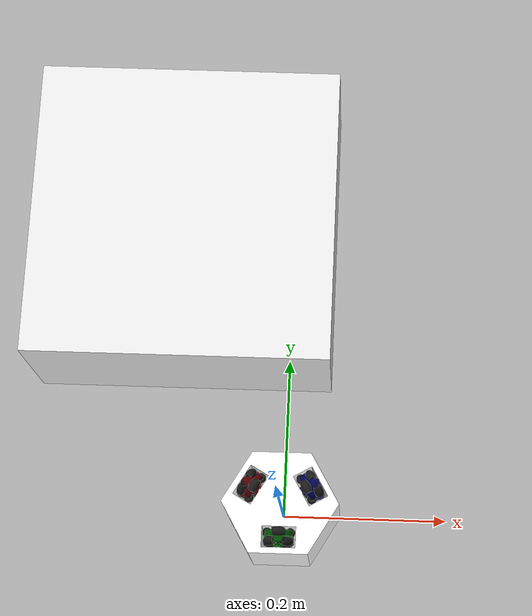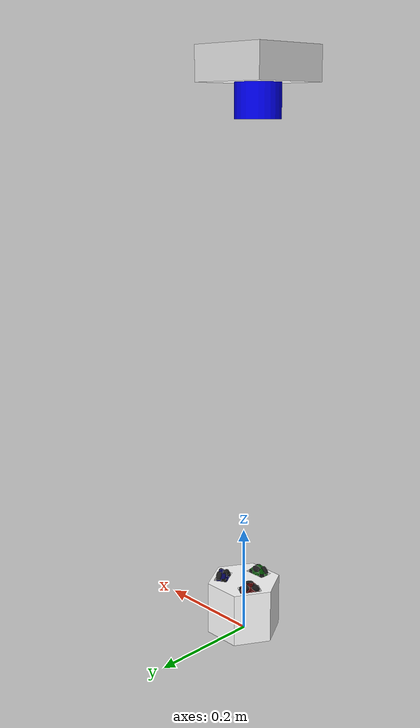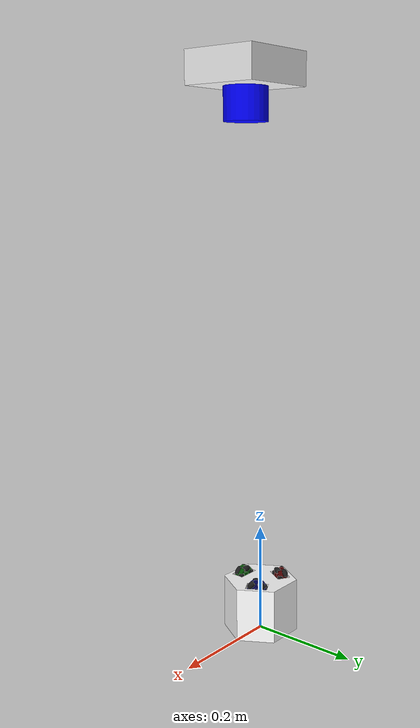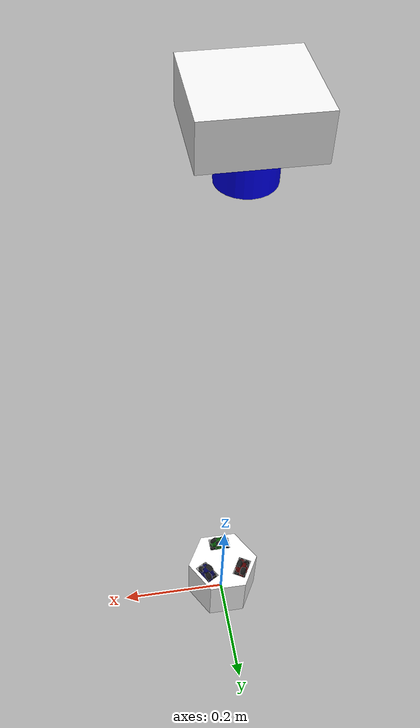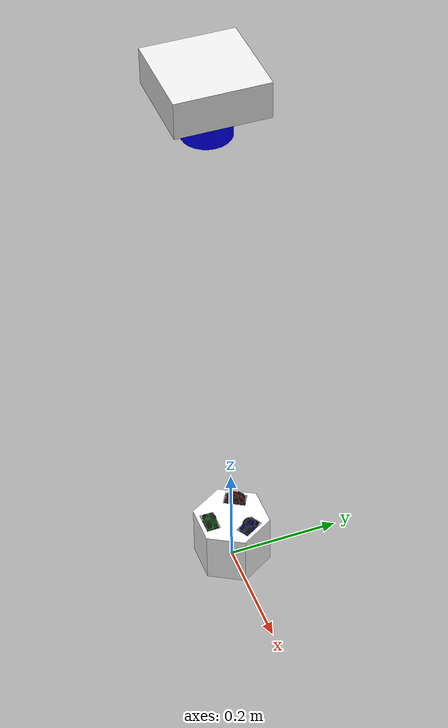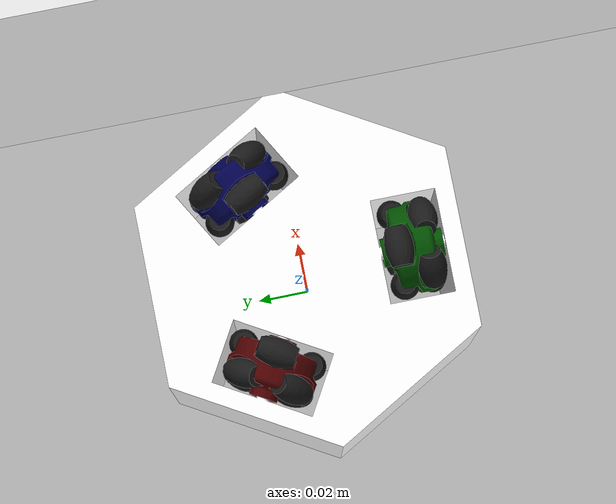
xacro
<?xml version="1.0"?>
<robot xmlns:xacro="http://www.ros.org/wiki/xacro" name="celconv">
  <xacro:include filename="$(find celconv_description)/urdf/celconv_cell.urdf.xacro"/>

  <!-- Define the number of rows and columns as input -->
  <xacro:arg name="num_rows" default="1"/>
  <xacro:arg name="num_cols" default="1"/>

  <xacro:arg name="is_sim" default="false"/>
  <xacro:arg name="cam_fov_h" default="1.3962634"/>

  <xacro:arg name="prefix" default=""/>

  <xacro:property name="is_sim" value="$(arg is_sim)"/>
  <xacro:property name="num_rows" value="$(arg num_rows)"/>
  <xacro:property name="num_cols" value="$(arg num_cols)"/>

  <!-- Define the distance between cells -->
  <xacro:property name="dist_bias" value="0.000"/>
  <xacro:property name="row_dist" value="${dist_bias + 0.12}"/>
  <xacro:property name="col_dist" value="${dist_bias + 0.06928 * 1.5}"/>
  <xacro:property name="row" value="0"/>
  <xacro:property name="col" value="0"/>

  <link name="base_link"></link>

  <!-- Define a macro to handle cell creation and joint connection -->
  <xacro:macro name="create_cells" params="row col num_rows num_cols">
    <!-- Base case: if row >= num_rows, stop the recursion -->
    <xacro:if value="${row >= num_rows}">
      <!-- Recursion stops -->
    </xacro:if>

    <!-- Continue if more rows are to be processed -->
    <xacro:if value="${row &lt; num_rows}">
      <!-- Calculate y position -->
      <xacro:property name="y" value="${row * row_dist - (col % 2) * (row_dist / 2)}"/>
      <xacro:property name="x" value="${col * col_dist}"/>
      <xacro:property name="z" value="0"/>

      <!-- Handle cells in the current row -->
      <xacro:if value="${col &lt; num_cols}">
        <xacro:property name="cell_index" value="${row * num_cols + col}"/>
        <xacro:celconv_cell name="${cell_index}"
                            parent_name="base"
                            color="1 1 1"
                            xyz="${x} ${y} ${z}"
                            rpy="0 0 0"
                            is_sim="$(arg is_sim)"/>

        <!-- Recurse for the next column -->
        <xacro:create_cells row="${row}" col="${col + 1}" num_rows="${num_rows}" num_cols="${num_cols}"/>
      </xacro:if>

      <!-- Move to the next row after finishing the current row's columns -->
      <xacro:if value="${col == num_cols}">
        <xacro:create_cells row="${row + 1}" col="0" num_rows="${num_rows}" num_cols="${num_cols}"/>
      </xacro:if>
    </xacro:if>
  </xacro:macro>

  <!-- Start the cell creation process -->
  <xacro:create_cells row="${row}" col="${col}" num_rows="${num_rows}" num_cols="${num_cols}"/>

  <!-- Define the camera -->

  <joint name="camera_joint" type="fixed">
    <origin xyz="${(num_cols-1) * col_dist * 0.5} ${(num_rows - 1.5) * row_dist * 0.5}  1" rpy="0 1.571 0"/>
    <parent link="base_link"/>
    <child link="camera_link"/>
  </joint>

  <link name="camera_link">
    <visual>
      <origin xyz="-0.03 0 0" rpy="0 0 0"/>
      <geometry>
        <box size="0.06 0.15 0.15" />
      </geometry>
      <material name="white" />
    </visual>
    <visual>
      <origin xyz="0.03 0 0 " rpy="0 ${pi/2} 0"/>
      <geometry>
        <cylinder length="0.06" radius="0.04" />
      </geometry>
      <material name="blue" >
        <color rgba="0 0 1 1"/> <!-- RGBA for blue color, fully opaque -->
      </material>
    </visual>
    <collision>
      <origin xyz="0.0 0 0" rpy="0 0 0"/>
      <geometry>
        <box size="0.15 0.15 0.12" />
      </geometry>
    </collision>
  </link>

  <joint name="camera_optical_joint" type="fixed">
    <origin xyz="0 0 0" rpy="-1.571 0 -1.571" />
    <parent link="camera_link" />
    <child link="camera_link_optical" />
  </joint>

  <link name="camera_link_optical"></link>

  <gazebo reference="camera_link">
    <sensor type="camera" name="celconv_camera">
      <update_rate>30</update_rate>
      <visualize>true</visualize>
      <camera name="cam">
        <horizontal_fov>$(arg cam_fov_h)</horizontal_fov>
        <image>
          <width>640</width>
          <height>480</height>
          <format>R8G8B8</format>
        </image>
        <clip>
           <near>0.02</near>
           <far>300</far>
        </clip>
        <noise>
          <type>gaussian</type>
          <mean>0.0</mean>
          <stddev>0.007</stddev>
        </noise>
      </camera>
      <plugin name="camera_controller" filename="libgazebo_ros_camera.so">
        <frame_name>camera_link_optical</frame_name>
        <min_depth>0.1</min_depth>
        <max_depth>500</max_depth>
      </plugin>
    </sensor>
  </gazebo>

  <xacro:if value="$(arg is_sim)">
    <gazebo>
      <plugin filename="libgazebo_ros2_control.so" name="gazebo_ros2_control">
        <parameters>$(find celconv_control)/config/$(arg prefix)_gazebo_control.yaml</parameters>
      </plugin>
    </gazebo>
  </xacro:if>

</robot>

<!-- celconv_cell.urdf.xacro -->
<robot xmlns:xacro="http://www.ros.org/wiki/xacro">

  <xacro:include filename="$(find celconv_description)/urdf/celconv_rim.urdf.xacro"/>

  <xacro:macro name="celconv_cell" params="name parent_name color xyz rpy is_sim">
    <link name="cell_${name}_${parent_name}_link">

      <inertial>
        <mass value="2.0"/>
        <inertia
          ixx="0"
          ixy="0"
          ixz="0"
          iyy="0"
          iyz="0"
          izz="0"/>
      </inertial>

      <visual>
        <geometry>
          <mesh filename="file://$(find celconv_description)/mesh/celconv_base.stl"/>
        </geometry>
        <material name="cell_${name}_${parent_name}_material">
          <color rgba="${color} 1"/>
        </material>
      </visual>

      <collision>
        <geometry>
          <mesh filename="file://$(find celconv_description)/mesh/celconv_base.stl"/>
        </geometry>
      </collision>

    </link>

    <joint
  	  name="cell_${name}_to_${parent_name}_joint"
  	  type="fixed">
  	  <parent link="${parent_name}_link" />
  	  <child link="cell_${name}_${parent_name}_link" />
  	  <axis xyz="0 0 0"/>
  	  <origin xyz="${xyz}" rpy="${rpy}"/>
  	</joint>

    <xacro:celconv_rim
		  name="left"
      parent_name="cell_${name}_${parent_name}"
		  color="0.3 0 0"
		  xyz="-0.03507 0.02025 0.095"
		  rpy="1.570796326794896 0 1.047197551196597"/>

	  <xacro:celconv_rim
	  	name="back"
      parent_name="cell_${name}_${parent_name}"
	  	color="0 0.3 0"
	  	xyz="0 -0.0405 0.095"
	  	rpy="1.570796326794896 0 3.141592653589793"/>

	  <xacro:celconv_rim
	  	name="right"
      parent_name="cell_${name}_${parent_name}"
	  	color="0 0 0.3"
	  	xyz="0.03507 0.02025 0.095"
	  	rpy="1.570796326794896 0 -1.047197551196597"/>

  	<ros2_control name="cell_${name}_${parent_name}_hardware" type="system">
  	  <hardware>
	  	<xacro:if value="${is_sim}">
  	    	<plugin>gazebo_ros2_control/GazeboSystem</plugin>
		</xacro:if>
  	  </hardware>
	    <joint name="rim_left_to_cell_${name}_${parent_name}_joint">
        	<command_interface name="velocity"/>
        	<state_interface name="position"/>
        	<state_interface name="velocity"/>
	    </joint>
	    <joint name="rim_back_to_cell_${name}_${parent_name}_joint">
        	<command_interface name="velocity"/>
        	<state_interface name="position"/>
        	<state_interface name="velocity"/>
	    </joint>
	    <joint name="rim_right_to_cell_${name}_${parent_name}_joint">
        	<command_interface name="velocity"/>
        	<state_interface name="position"/>
        	<state_interface name="velocity"/>
	    </joint>
  	</ros2_control>

  </xacro:macro>
</robot>

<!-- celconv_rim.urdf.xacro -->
<robot xmlns:xacro="http://www.ros.org/wiki/xacro">

  <xacro:include filename="$(find celconv_description)/urdf/celconv_roller.urdf.xacro"/>

  <xacro:macro name="celconv_rim"  params="name parent_name color xyz rpy">
  	<link name="rim_${name}_${parent_name}_link">

  	  <inertial>
  	  	<origin xyz="0 0 -0.000343"/>
  	  	<mass value="0.00835758"/>
  	  	<inertia
  	  		ixx="6.63684e-07"
  	  		ixy="0"
  	  		ixz="0"
  	  		iyy="6.63684e-07"
  	  		iyz="0"
  	  		izz="9.40333e-07"/>
  	  </inertial>

  	  <visual>
  	  	<geometry>
  	  		<mesh filename="file://$(find celconv_description)/mesh/celconv_rim.stl"/>
  	  	</geometry>
  	  	<material name="rim_${name}_${parent_name}_material">
  	  		<color rgba="${color} 1"/>
  	  	</material>
  	  </visual>

  	  <collision>
  	  	<geometry>
  	  		<mesh filename="file://$(find celconv_description)/mesh/celconv_rim.stl"/>
  	  	</geometry>
  	  </collision>

  	</link>
  	<joint
  	  name="rim_${name}_to_${parent_name}_joint"
  	  type="continuous">
  	  <parent link="${parent_name}_link" />
  	  <child link="rim_${name}_${parent_name}_link" />
  	  <axis xyz="0 0 1"/>
  	  <origin xyz="${xyz}" rpy="${rpy}"/>
  	</joint>

  	<xacro:celconv_roller
  	  parent_name="rim_${name}_${parent_name}"
  	  name="e"
  	  xyz="0.01355 0 0.0055"
  	  rpy="-1.570796326794896 0 0"
  	/>
  	<xacro:celconv_roller
  	  parent_name="rim_${name}_${parent_name}"
  	  name="ne"
  	  xyz="0.00958129689 0.00958129689 -0.0055"
  	  rpy="-1.570796326794896 0 0.7853981633974483"
  	/>
  	<xacro:celconv_roller
  	  parent_name="rim_${name}_${parent_name}"
  	  name="n"
  	  xyz="0 0.01355 0.0055"
  	  rpy="-1.570796326794896 0 1.570796326794896"
  	/>
  	<xacro:celconv_roller
  	  parent_name="rim_${name}_${parent_name}"
  	  name="nw"
  	  xyz="-0.00958129689 0.00958129689 -0.0055"
  	  rpy="-1.570796326794896 0 2.356194490192345"
  	/>
  	<xacro:celconv_roller
  	  parent_name="rim_${name}_${parent_name}"
  	  name="w"
  	  xyz="-0.01355 0 0.0055"
  	  rpy="-1.570796326794896 0 3.141592653589793"
  	/>
  	<xacro:celconv_roller
  	  parent_name="rim_${name}_${parent_name}"
  	  name="sw"
  	  xyz="-0.00958129689 -0.00958129689 -0.0055"
  	  rpy="-1.570796326794896 0 -2.356194490192345"
  	/>
  	<xacro:celconv_roller
  	  parent_name="rim_${name}_${parent_name}"
  	  name="s"
  	  xyz="0 -0.01355 0.0055"
  	  rpy="-1.570796326794896 0 -1.570796326794896"
  	/>
  	<xacro:celconv_roller
  	  parent_name="rim_${name}_${parent_name}"
  	  name="se"
  	  xyz="0.00958129689 -0.00958129689 -0.0055"
  	  rpy="-1.570796326794896 0 -0.7853981633974483"
  	/>

  </xacro:macro>

</robot>

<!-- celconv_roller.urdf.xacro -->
<robot xmlns:xacro="http://www.ros.org/wiki/xacro">

<xacro:macro name="celconv_roller" params="parent_name name xyz rpy">

  <link name="roller_${name}_${parent_name}_link">
  	<inertial>
  	  <mass value="0.00113845"/>
  	  <inertia
  	  	ixx="2.53776e-08"
  	  	ixy="0"
  	  	ixz="0"
  	  	iyy="2.53776e-08"
  	  	iyz="0"
  	  	izz="1.47666e-08"/>
  	</inertial>

  	<visual>
  	  <geometry>
  	  	<mesh filename="file://$(find celconv_description)/mesh/celconv_roller.stl"/>
  	  </geometry>
  	  <material name="roller_${name}_${parent_name}_material">
  	  	<color rgba="0.1 0.1 0.1 1"/>
  	  </material>
  	</visual>

  	<collision>
	  <surface>
	    <friction>
	      <ode>
	        <mu>1.0</mu>
	        <mu2>1.0</mu2>
	      </ode>
	    </friction>
	  </surface>
  	  <geometry>
  	  	<mesh filename="file://$(find celconv_description)/mesh/celconv_roller.stl"/>
  	  </geometry>
  	</collision>
  </link>

  <gazebo reference="roller_${name}_${parent_name}_link">
    <material>Gazebo/Black</material>
  </gazebo>
	<joint name="roller_${name}_to_${parent_name}_joint" type="continuous">
		<parent link="${parent_name}_link"/>
		<child link="roller_${name}_${parent_name}_link"/>
		<axis xyz="0 0 1"/>
		<origin xyz="${xyz}" rpy="${rpy}"/>
	</joint>
  </xacro:macro>

</robot>
